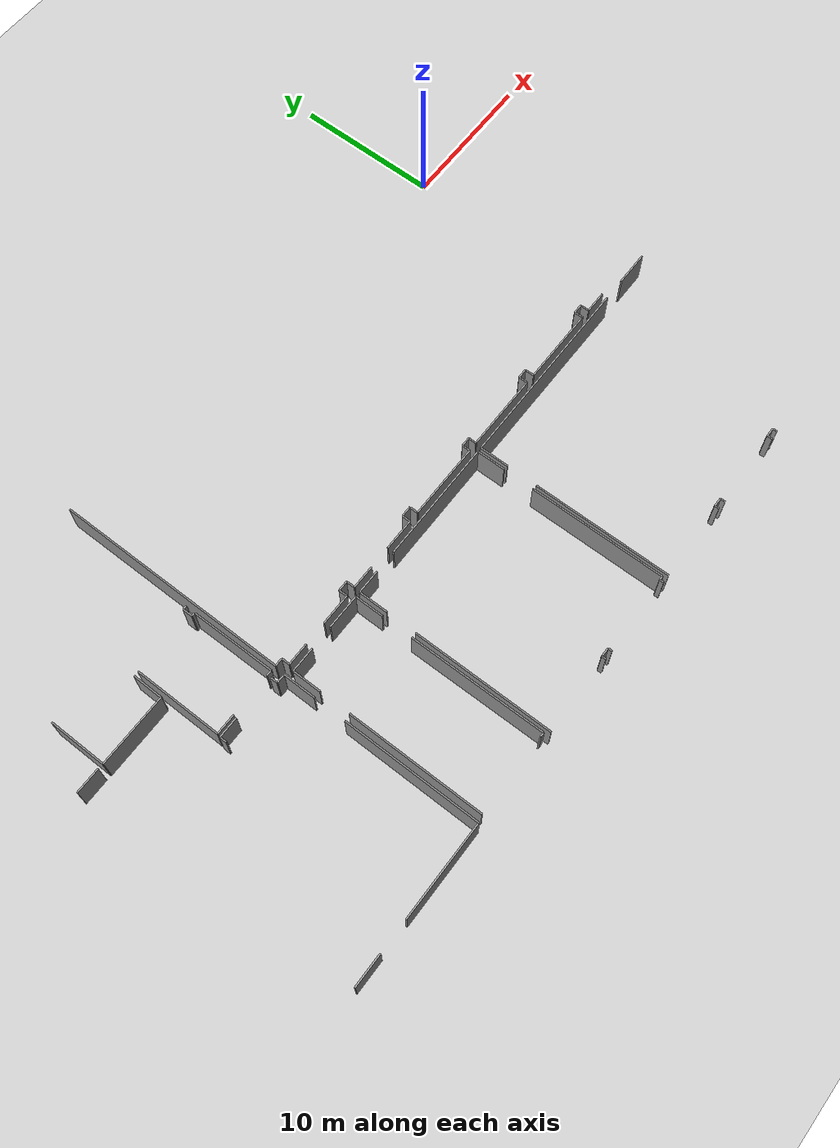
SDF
<sdf version="1.6">
 <world name="default">
  <model name="ground_plane">
   <static>1</static>
   <link name="link">
    <collision name="collision">
     <geometry><plane><normal>0 0 1</normal><size>100 100</size></plane></geometry>
     <surface><friction><ode><mu>100</mu><mu2>50</mu2></ode></friction></surface>
    </collision>
    <visual name="visual">
     <cast_shadows>0</cast_shadows>
     <geometry><plane><normal>0 0 1</normal><size>100 100</size></plane></geometry>
     <material>
      <script><uri>file://media/materials/scripts/gazebo.material</uri><name>Gazebo/Grey</name></script>
     </material>
    </visual>
   </link>
  </model>
  <model name="50010535_PLAN2">
   <static>1</static>
   <link name="Wall_657">
    <collision name="Wall_657_Collision">
     <geometry><box><size>1.54685742966 0.1 2.5</size></box></geometry>
     <pose>0.773428714828 0 1.25 0 0 0</pose>
    </collision>
    <visual name="Wall_657_Visual">
     <pose>0.773428714828 0 1.25 0 0 0</pose>
     <geometry><box><size>1.54685742966 0.1 2.5</size></box></geometry>
     <material>
      <script><uri>file://media/materials/scripts/gazebo.material</uri><name>Gazebo/Grey</name></script>
      <ambient>1 1 1 1</ambient>
     </material>
    </visual>
    <pose>101.500505073 -45.1953012331 0 0 0 3.14159265359</pose>
   </link>
   <link name="Wall_658">
    <collision name="Wall_658_Collision">
     <geometry><box><size>0.611424178701 0.1 2.5</size></box></geometry>
     <pose>0.30571208935 0 1.25 0 0 0</pose>
    </collision>
    <visual name="Wall_658_Visual">
     <pose>0.30571208935 0 1.25 0 0 0</pose>
     <geometry><box><size>0.611424178701 0.1 2.5</size></box></geometry>
     <material>
      <script><uri>file://media/materials/scripts/gazebo.material</uri><name>Gazebo/Grey</name></script>
      <ambient>1 1 1 1</ambient>
     </material>
    </visual>
    <pose>99.9536476433 -45.1953012331 0 0 0 1.57079632679</pose>
   </link>
   <link name="Wall_659">
    <collision name="Wall_659_Collision">
     <geometry><box><size>0.663011505499 0.1 2.5</size></box></geometry>
     <pose>0.331505752749 0 1.25 0 0 0</pose>
    </collision>
    <visual name="Wall_659_Visual">
     <pose>0.331505752749 0 1.25 0 0 0</pose>
     <geometry><box><size>0.663011505499 0.1 2.5</size></box></geometry>
     <material>
      <script><uri>file://media/materials/scripts/gazebo.material</uri><name>Gazebo/Grey</name></script>
      <ambient>1 1 1 1</ambient>
     </material>
    </visual>
    <pose>99.9536476433 -44.5838770544 0 0 0 3.14159265359</pose>
   </link>
   <link name="Wall_660">
    <collision name="Wall_660_Collision">
     <geometry><box><size>0.596684942473 0.1 2.5</size></box></geometry>
     <pose>0.298342471236 0 1.25 0 0 0</pose>
    </collision>
    <visual name="Wall_660_Visual">
     <pose>0.298342471236 0 1.25 0 0 0</pose>
     <geometry><box><size>0.596684942473 0.1 2.5</size></box></geometry>
     <material>
      <script><uri>file://media/materials/scripts/gazebo.material</uri><name>Gazebo/Grey</name></script>
      <ambient>1 1 1 1</ambient>
     </material>
    </visual>
    <pose>99.2906361378 -44.5838770544 0 0 0 -1.57079632679</pose>
   </link>
   <link name="Wall_661">
    <collision name="Wall_661_Collision">
     <geometry><box><size>5.36076186604 0.1 2.5</size></box></geometry>
     <pose>2.68038093302 0 1.25 0 0 0</pose>
    </collision>
    <visual name="Wall_661_Visual">
     <pose>2.68038093302 0 1.25 0 0 0</pose>
     <geometry><box><size>5.36076186604 0.1 2.5</size></box></geometry>
     <material>
      <script><uri>file://media/materials/scripts/gazebo.material</uri><name>Gazebo/Grey</name></script>
      <ambient>1 1 1 1</ambient>
     </material>
    </visual>
    <pose>99.2906361378 -45.1805619969 0 0 0 3.14159265359</pose>
   </link>
   <link name="Wall_662">
    <collision name="Wall_662_Collision">
     <geometry><box><size>0.632008284467 0.1 2.5</size></box></geometry>
     <pose>0.316004142234 0 1.25 0 0 0</pose>
    </collision>
    <visual name="Wall_662_Visual">
     <pose>0.316004142234 0 1.25 0 0 0</pose>
     <geometry><box><size>0.632008284467 0.1 2.5</size></box></geometry>
     <material>
      <script><uri>file://media/materials/scripts/gazebo.material</uri><name>Gazebo/Grey</name></script>
      <ambient>1 1 1 1</ambient>
     </material>
    </visual>
    <pose>93.9298742718 -45.1805619969 0 0 0 1.57079632679</pose>
   </link>
   <link name="Wall_663">
    <collision name="Wall_663_Collision">
     <geometry><box><size>0.668348125512 0.1 2.5</size></box></geometry>
     <pose>0.334174062756 0 1.25 0 0 0</pose>
    </collision>
    <visual name="Wall_663_Visual">
     <pose>0.334174062756 0 1.25 0 0 0</pose>
     <geometry><box><size>0.668348125512 0.1 2.5</size></box></geometry>
     <material>
      <script><uri>file://media/materials/scripts/gazebo.material</uri><name>Gazebo/Grey</name></script>
      <ambient>1 1 1 1</ambient>
     </material>
    </visual>
    <pose>93.9298742718 -44.5485537124 0 0 0 3.14159265359</pose>
   </link>
   <link name="Wall_664">
    <collision name="Wall_664_Collision">
     <geometry><box><size>0.61040767965 0.1 2.5</size></box></geometry>
     <pose>0.305203839825 0 1.25 0 0 0</pose>
    </collision>
    <visual name="Wall_664_Visual">
     <pose>0.305203839825 0 1.25 0 0 0</pose>
     <geometry><box><size>0.61040767965 0.1 2.5</size></box></geometry>
     <material>
      <script><uri>file://media/materials/scripts/gazebo.material</uri><name>Gazebo/Grey</name></script>
      <ambient>1 1 1 1</ambient>
     </material>
    </visual>
    <pose>93.2615261463 -44.5485537124 0 0 0 -1.57079632679</pose>
   </link>
   <link name="Wall_665">
    <collision name="Wall_665_Collision">
     <geometry><box><size>5.37600935179 0.1 2.5</size></box></geometry>
     <pose>2.6880046759 0 1.25 0 0 0</pose>
    </collision>
    <visual name="Wall_665_Visual">
     <pose>2.6880046759 0 1.25 0 0 0</pose>
     <geometry><box><size>5.37600935179 0.1 2.5</size></box></geometry>
     <material>
      <script><uri>file://media/materials/scripts/gazebo.material</uri><name>Gazebo/Grey</name></script>
      <ambient>1 1 1 1</ambient>
     </material>
    </visual>
    <pose>93.2615261463 -45.1589613921 0 0 0 3.14159265359</pose>
   </link>
   <link name="Wall_666">
    <collision name="Wall_666_Collision">
     <geometry><box><size>0.552213109026 0.1 2.5</size></box></geometry>
     <pose>0.276106554513 0 1.25 0 0 0</pose>
    </collision>
    <visual name="Wall_666_Visual">
     <pose>0.276106554513 0 1.25 0 0 0</pose>
     <geometry><box><size>0.552213109026 0.1 2.5</size></box></geometry>
     <material>
      <script><uri>file://media/materials/scripts/gazebo.material</uri><name>Gazebo/Grey</name></script>
      <ambient>1 1 1 1</ambient>
     </material>
    </visual>
    <pose>87.8855167945 -45.1589613921 0 0 0 1.57079632679</pose>
   </link>
   <link name="Wall_667">
    <collision name="Wall_667_Collision">
     <geometry><box><size>0.639377902581 0.1 2.5</size></box></geometry>
     <pose>0.319688951291 0 1.25 0 0 0</pose>
    </collision>
    <visual name="Wall_667_Visual">
     <pose>0.319688951291 0 1.25 0 0 0</pose>
     <geometry><box><size>0.639377902581 0.1 2.5</size></box></geometry>
     <material>
      <script><uri>file://media/materials/scripts/gazebo.material</uri><name>Gazebo/Grey</name></script>
      <ambient>1 1 1 1</ambient>
     </material>
    </visual>
    <pose>87.8855167945 -44.6067482831 0 0 0 3.14159265359</pose>
   </link>
   <link name="Wall_668">
    <collision name="Wall_668_Collision">
     <geometry><box><size>0.566698220491 0.1 2.5</size></box></geometry>
     <pose>0.283349110246 0 1.25 0 0 0</pose>
    </collision>
    <visual name="Wall_668_Visual">
     <pose>0.283349110246 0 1.25 0 0 0</pose>
     <geometry><box><size>0.566698220491 0.1 2.5</size></box></geometry>
     <material>
      <script><uri>file://media/materials/scripts/gazebo.material</uri><name>Gazebo/Grey</name></script>
      <ambient>1 1 1 1</ambient>
     </material>
    </visual>
    <pose>87.2461388919 -44.6067482831 0 0 0 -1.57079632679</pose>
   </link>
   <link name="Wall_669">
    <collision name="Wall_669_Collision">
     <geometry><box><size>5.26216145817 0.1 2.5</size></box></geometry>
     <pose>2.63108072908 0 1.25 0 0 0</pose>
    </collision>
    <visual name="Wall_669_Visual">
     <pose>2.63108072908 0 1.25 0 0 0</pose>
     <geometry><box><size>5.26216145817 0.1 2.5</size></box></geometry>
     <material>
      <script><uri>file://media/materials/scripts/gazebo.material</uri><name>Gazebo/Grey</name></script>
      <ambient>1 1 1 1</ambient>
     </material>
    </visual>
    <pose>87.2461388919 -45.1734465036 0 0 0 3.14159265359</pose>
   </link>
   <link name="Wall_670">
    <collision name="Wall_670_Collision">
     <geometry><box><size>0.587282326258 0.1 2.5</size></box></geometry>
     <pose>0.293641163129 0 1.25 0 0 0</pose>
    </collision>
    <visual name="Wall_670_Visual">
     <pose>0.293641163129 0 1.25 0 0 0</pose>
     <geometry><box><size>0.587282326258 0.1 2.5</size></box></geometry>
     <material>
      <script><uri>file://media/materials/scripts/gazebo.material</uri><name>Gazebo/Grey</name></script>
      <ambient>1 1 1 1</ambient>
     </material>
    </visual>
    <pose>81.9839774337 -45.1734465036 0 0 0 1.57079632679</pose>
   </link>
   <link name="Wall_671">
    <collision name="Wall_671_Collision">
     <geometry><box><size>0.726034446612 0.1 2.5</size></box></geometry>
     <pose>0.363017223306 0 1.25 0 0 0</pose>
    </collision>
    <visual name="Wall_671_Visual">
     <pose>0.363017223306 0 1.25 0 0 0</pose>
     <geometry><box><size>0.726034446612 0.1 2.5</size></box></geometry>
     <material>
      <script><uri>file://media/materials/scripts/gazebo.material</uri><name>Gazebo/Grey</name></script>
      <ambient>1 1 1 1</ambient>
     </material>
    </visual>
    <pose>81.9839774337 -44.5861641773 0 0 0 3.14159265359</pose>
   </link>
   <link name="Wall_672">
    <collision name="Wall_672_Collision">
     <geometry><box><size>0.582708080532 0.1 2.5</size></box></geometry>
     <pose>0.291354040266 0 1.25 0 0 0</pose>
    </collision>
    <visual name="Wall_672_Visual">
     <pose>0.291354040266 0 1.25 0 0 0</pose>
     <geometry><box><size>0.582708080532 0.1 2.5</size></box></geometry>
     <material>
      <script><uri>file://media/materials/scripts/gazebo.material</uri><name>Gazebo/Grey</name></script>
      <ambient>1 1 1 1</ambient>
     </material>
    </visual>
    <pose>81.2579429871 -44.5861641773 0 0 0 -1.57079632679</pose>
   </link>
   <link name="Wall_673">
    <collision name="Wall_673_Collision">
     <geometry><box><size>2.17911983888 0.1 2.5</size></box></geometry>
     <pose>1.08955991944 0 1.25 0 0 0</pose>
    </collision>
    <visual name="Wall_673_Visual">
     <pose>1.08955991944 0 1.25 0 0 0</pose>
     <geometry><box><size>2.17911983888 0.1 2.5</size></box></geometry>
     <material>
      <script><uri>file://media/materials/scripts/gazebo.material</uri><name>Gazebo/Grey</name></script>
      <ambient>1 1 1 1</ambient>
     </material>
    </visual>
    <pose>81.2579429871 -45.1688722578 0 0 0 3.14159265359</pose>
   </link>
   <link name="Wall_674">
    <collision name="Wall_674_Collision">
     <geometry><box><size>1.60937212124 0.1 2.5</size></box></geometry>
     <pose>0.804686060621 0 1.25 0 0 0</pose>
    </collision>
    <visual name="Wall_674_Visual">
     <pose>0.804686060621 0 1.25 0 0 0</pose>
     <geometry><box><size>1.60937212124 0.1 2.5</size></box></geometry>
     <material>
      <script><uri>file://media/materials/scripts/gazebo.material</uri><name>Gazebo/Grey</name></script>
      <ambient>1 1 1 1</ambient>
     </material>
    </visual>
    <pose>77.5225631024 -45.1688722578 0 0 0 3.14159265359</pose>
   </link>
   <link name="Wall_675">
    <collision name="Wall_675_Collision">
     <geometry><box><size>0.591094197696 0.1 2.5</size></box></geometry>
     <pose>0.295547098848 0 1.25 0 0 0</pose>
    </collision>
    <visual name="Wall_675_Visual">
     <pose>0.295547098848 0 1.25 0 0 0</pose>
     <geometry><box><size>0.591094197696 0.1 2.5</size></box></geometry>
     <material>
      <script><uri>file://media/materials/scripts/gazebo.material</uri><name>Gazebo/Grey</name></script>
      <ambient>1 1 1 1</ambient>
     </material>
    </visual>
    <pose>75.9131909811 -45.1688722578 0 0 0 1.57079632679</pose>
   </link>
   <link name="Wall_676">
    <collision name="Wall_676_Collision">
     <geometry><box><size>0.697572473206 0.1 2.5</size></box></geometry>
     <pose>0.348786236603 0 1.25 0 0 0</pose>
    </collision>
    <visual name="Wall_676_Visual">
     <pose>0.348786236603 0 1.25 0 0 0</pose>
     <geometry><box><size>0.697572473206 0.1 2.5</size></box></geometry>
     <material>
      <script><uri>file://media/materials/scripts/gazebo.material</uri><name>Gazebo/Grey</name></script>
      <ambient>1 1 1 1</ambient>
     </material>
    </visual>
    <pose>75.9131909811 -44.5777780601 0 0 0 3.14159265359</pose>
   </link>
   <link name="Wall_677">
    <collision name="Wall_677_Collision">
     <geometry><box><size>0.581183331957 0.1 2.5</size></box></geometry>
     <pose>0.290591665978 0 1.25 0 0 0</pose>
    </collision>
    <visual name="Wall_677_Visual">
     <pose>0.290591665978 0 1.25 0 0 0</pose>
     <geometry><box><size>0.581183331957 0.1 2.5</size></box></geometry>
     <material>
      <script><uri>file://media/materials/scripts/gazebo.material</uri><name>Gazebo/Grey</name></script>
      <ambient>1 1 1 1</ambient>
     </material>
    </visual>
    <pose>75.2156185079 -44.5777780601 0 0 0 -1.57079632679</pose>
   </link>
   <link name="Wall_678">
    <collision name="Wall_678_Collision">
     <geometry><box><size>2.13159850829 0.1 2.5</size></box></geometry>
     <pose>1.06579925414 0 1.25 0 0 0</pose>
    </collision>
    <visual name="Wall_678_Visual">
     <pose>1.06579925414 0 1.25 0 0 0</pose>
     <geometry><box><size>2.13159850829 0.1 2.5</size></box></geometry>
     <material>
      <script><uri>file://media/materials/scripts/gazebo.material</uri><name>Gazebo/Grey</name></script>
      <ambient>1 1 1 1</ambient>
     </material>
    </visual>
    <pose>75.2156185079 -45.1589613921 0 0 0 3.14159265359</pose>
   </link>
   <link name="Wall_679">
    <collision name="Wall_679_Collision">
     <geometry><box><size>1.52042845435 0.1 2.5</size></box></geometry>
     <pose>0.760214227175 0 1.25 0 0 0</pose>
    </collision>
    <visual name="Wall_679_Visual">
     <pose>0.760214227175 0 1.25 0 0 0</pose>
     <geometry><box><size>1.52042845435 0.1 2.5</size></box></geometry>
     <material>
      <script><uri>file://media/materials/scripts/gazebo.material</uri><name>Gazebo/Grey</name></script>
      <ambient>1 1 1 1</ambient>
     </material>
    </visual>
    <pose>71.4494895269 -45.1589613921 0 0 0 3.14159265359</pose>
   </link>
   <link name="Wall_680">
    <collision name="Wall_680_Collision">
     <geometry><box><size>0.565173471916 0.1 2.5</size></box></geometry>
     <pose>0.282586735958 0 1.25 0 0 0</pose>
    </collision>
    <visual name="Wall_680_Visual">
     <pose>0.282586735958 0 1.25 0 0 0</pose>
     <geometry><box><size>0.565173471916 0.1 2.5</size></box></geometry>
     <material>
      <script><uri>file://media/materials/scripts/gazebo.material</uri><name>Gazebo/Grey</name></script>
      <ambient>1 1 1 1</ambient>
     </material>
    </visual>
    <pose>69.9290610725 -45.1589613921 0 0 0 1.57079632679</pose>
   </link>
   <link name="Wall_681">
    <collision name="Wall_681_Collision">
     <geometry><box><size>0.551450734738 0.1 2.5</size></box></geometry>
     <pose>0.275725367369 0 1.25 0 0 0</pose>
    </collision>
    <visual name="Wall_681_Visual">
     <pose>0.275725367369 0 1.25 0 0 0</pose>
     <geometry><box><size>0.551450734738 0.1 2.5</size></box></geometry>
     <material>
      <script><uri>file://media/materials/scripts/gazebo.material</uri><name>Gazebo/Grey</name></script>
      <ambient>1 1 1 1</ambient>
     </material>
    </visual>
    <pose>69.9290610725 -44.5937879202 0 0 0 3.14159265359</pose>
   </link>
   <link name="Wall_682">
    <collision name="Wall_682_Collision">
     <geometry><box><size>16.2129057261 0.1 2.5</size></box></geometry>
     <pose>8.10645286303 0 1.25 0 0 0</pose>
    </collision>
    <visual name="Wall_682_Visual">
     <pose>8.10645286303 0 1.25 0 0 0</pose>
     <geometry><box><size>16.2129057261 0.1 2.5</size></box></geometry>
     <material>
      <script><uri>file://media/materials/scripts/gazebo.material</uri><name>Gazebo/Grey</name></script>
      <ambient>1 1 1 1</ambient>
     </material>
    </visual>
    <pose>69.3776103378 -44.5937879202 0 0 0 1.57079632679</pose>
   </link>
   <link name="Wall_697">
    <collision name="Wall_697_Collision">
     <geometry><box><size>0.315368830327 0.1 2.5</size></box></geometry>
     <pose>0.157684415164 0 1.25 0 0 0</pose>
    </collision>
    <visual name="Wall_697_Visual">
     <pose>0.157684415164 0 1.25 0 0 0</pose>
     <geometry><box><size>0.315368830327 0.1 2.5</size></box></geometry>
     <material>
      <script><uri>file://media/materials/scripts/gazebo.material</uri><name>Gazebo/Grey</name></script>
      <ambient>1 1 1 1</ambient>
     </material>
    </visual>
    <pose>99.8680075983 -59.4514462876 0 0 0 1.57079632679</pose>
   </link>
   <link name="Wall_698">
    <collision name="Wall_698_Collision">
     <geometry><box><size>0.620826794915 0.1 2.5</size></box></geometry>
     <pose>0.310413397457 0 1.25 0 0 0</pose>
    </collision>
    <visual name="Wall_698_Visual">
     <pose>0.310413397457 0 1.25 0 0 0</pose>
     <geometry><box><size>0.620826794915 0.1 2.5</size></box></geometry>
     <material>
      <script><uri>file://media/materials/scripts/gazebo.material</uri><name>Gazebo/Grey</name></script>
      <ambient>1 1 1 1</ambient>
     </material>
    </visual>
    <pose>99.8680075983 -59.1360774572 0 0 0 3.14159265359</pose>
   </link>
   <link name="Wall_699">
    <collision name="Wall_699_Collision">
     <geometry><box><size>0.363144285687 0.1 2.5</size></box></geometry>
     <pose>0.181572142844 0 1.25 0 0 0</pose>
    </collision>
    <visual name="Wall_699_Visual">
     <pose>0.181572142844 0 1.25 0 0 0</pose>
     <geometry><box><size>0.363144285687 0.1 2.5</size></box></geometry>
     <material>
      <script><uri>file://media/materials/scripts/gazebo.material</uri><name>Gazebo/Grey</name></script>
      <ambient>1 1 1 1</ambient>
     </material>
    </visual>
    <pose>99.2471808034 -59.1360774572 0 0 0 -1.57079632679</pose>
   </link>
   <link name="Wall_700">
    <collision name="Wall_700_Collision">
     <geometry><box><size>0.35348754471 0.1 2.5</size></box></geometry>
     <pose>0.176743772355 0 1.25 0 0 0</pose>
    </collision>
    <visual name="Wall_700_Visual">
     <pose>0.176743772355 0 1.25 0 0 0</pose>
     <geometry><box><size>0.35348754471 0.1 2.5</size></box></geometry>
     <material>
      <script><uri>file://media/materials/scripts/gazebo.material</uri><name>Gazebo/Grey</name></script>
      <ambient>1 1 1 1</ambient>
     </material>
    </visual>
    <pose>93.8876895612 -59.4992217429 0 0 0 1.57079632679</pose>
   </link>
   <link name="Wall_701">
    <collision name="Wall_701_Collision">
     <geometry><box><size>0.611424178701 0.1 2.5</size></box></geometry>
     <pose>0.30571208935 0 1.25 0 0 0</pose>
    </collision>
    <visual name="Wall_701_Visual">
     <pose>0.30571208935 0 1.25 0 0 0</pose>
     <geometry><box><size>0.611424178701 0.1 2.5</size></box></geometry>
     <material>
      <script><uri>file://media/materials/scripts/gazebo.material</uri><name>Gazebo/Grey</name></script>
      <ambient>1 1 1 1</ambient>
     </material>
    </visual>
    <pose>93.8876895612 -59.1457341982 0 0 0 3.14159265359</pose>
   </link>
   <link name="Wall_702">
    <collision name="Wall_702_Collision">
     <geometry><box><size>0.296055348373 0.1 2.5</size></box></geometry>
     <pose>0.148027674187 0 1.25 0 0 0</pose>
    </collision>
    <visual name="Wall_702_Visual">
     <pose>0.148027674187 0 1.25 0 0 0</pose>
     <geometry><box><size>0.296055348373 0.1 2.5</size></box></geometry>
     <material>
      <script><uri>file://media/materials/scripts/gazebo.material</uri><name>Gazebo/Grey</name></script>
      <ambient>1 1 1 1</ambient>
     </material>
    </visual>
    <pose>93.2762653825 -59.1457341982 0 0 0 -1.57079632679</pose>
   </link>
   <link name="Wall_703">
    <collision name="Wall_703_Collision">
     <geometry><box><size>9.64784661029 0.1 2.5</size></box></geometry>
     <pose>4.82392330515 0 1.25 0 0 0</pose>
    </collision>
    <visual name="Wall_703_Visual">
     <pose>4.82392330515 0 1.25 0 0 0</pose>
     <geometry><box><size>9.64784661029 0.1 2.5</size></box></geometry>
     <material>
      <script><uri>file://media/materials/scripts/gazebo.material</uri><name>Gazebo/Grey</name></script>
      <ambient>1 1 1 1</ambient>
     </material>
    </visual>
    <pose>87.8115664886 -59.4417895466 0 0 0 1.57079632679</pose>
   </link>
   <link name="Wall_704">
    <collision name="Wall_704_Collision">
     <geometry><box><size>2.0215624861 0.1 2.5</size></box></geometry>
     <pose>1.01078124305 0 1.25 0 0 0</pose>
    </collision>
    <visual name="Wall_704_Visual">
     <pose>1.01078124305 0 1.25 0 0 0</pose>
     <geometry><box><size>2.0215624861 0.1 2.5</size></box></geometry>
     <material>
      <script><uri>file://media/materials/scripts/gazebo.material</uri><name>Gazebo/Grey</name></script>
      <ambient>1 1 1 1</ambient>
     </material>
    </visual>
    <pose>87.8115664886 -47.6232092146 0 0 0 1.57079632679</pose>
   </link>
   <link name="Wall_705">
    <collision name="Wall_705_Collision">
     <geometry><box><size>13.6881762101 0.1 2.5</size></box></geometry>
     <pose>6.84408810506 0 1.25 0 0 0</pose>
    </collision>
    <visual name="Wall_705_Visual">
     <pose>6.84408810506 0 1.25 0 0 0</pose>
     <geometry><box><size>13.6881762101 0.1 2.5</size></box></geometry>
     <material>
      <script><uri>file://media/materials/scripts/gazebo.material</uri><name>Gazebo/Grey</name></script>
      <ambient>1 1 1 1</ambient>
     </material>
    </visual>
    <pose>87.8115664886 -45.6016467285 0 0 0 0.0</pose>
   </link>
   <link name="Wall_706">
    <collision name="Wall_706_Collision">
     <geometry><box><size>2.4395977205 0.1 2.5</size></box></geometry>
     <pose>1.21979886025 0 1.25 0 0 0</pose>
    </collision>
    <visual name="Wall_706_Visual">
     <pose>1.21979886025 0 1.25 0 0 0</pose>
     <geometry><box><size>2.4395977205 0.1 2.5</size></box></geometry>
     <material>
      <script><uri>file://media/materials/scripts/gazebo.material</uri><name>Gazebo/Grey</name></script>
      <ambient>1 1 1 1</ambient>
     </material>
    </visual>
    <pose>103.063118238 -45.6016467285 0 0 0 0.0</pose>
   </link>
   <link name="Wall_709">
    <collision name="Wall_709_Collision">
     <geometry><box><size>0.269118123543 0.1 2.5</size></box></geometry>
     <pose>0.134559061771 0 1.25 0 0 0</pose>
    </collision>
    <visual name="Wall_709_Visual">
     <pose>0.134559061771 0 1.25 0 0 0</pose>
     <geometry><box><size>0.269118123543 0.1 2.5</size></box></geometry>
     <material>
      <script><uri>file://media/materials/scripts/gazebo.material</uri><name>Gazebo/Grey</name></script>
      <ambient>1 1 1 1</ambient>
     </material>
    </visual>
    <pose>87.5338081231 -59.1790245421 0 0 0 3.14159265359</pose>
   </link>
   <link name="Wall_710">
    <collision name="Wall_710_Collision">
     <geometry><box><size>0.280045488332 0.1 2.5</size></box></geometry>
     <pose>0.140022744166 0 1.25 0 0 0</pose>
    </collision>
    <visual name="Wall_710_Visual">
     <pose>0.140022744166 0 1.25 0 0 0</pose>
     <geometry><box><size>0.280045488332 0.1 2.5</size></box></geometry>
     <material>
      <script><uri>file://media/materials/scripts/gazebo.material</uri><name>Gazebo/Grey</name></script>
      <ambient>1 1 1 1</ambient>
     </material>
    </visual>
    <pose>87.2646899996 -59.1790245421 0 0 0 -1.57079632679</pose>
   </link>
   <link name="Wall_711">
    <collision name="Wall_711_Collision">
     <geometry><box><size>0.297580096949 0.1 2.5</size></box></geometry>
     <pose>0.148790048474 0 1.25 0 0 0</pose>
    </collision>
    <visual name="Wall_711_Visual">
     <pose>0.148790048474 0 1.25 0 0 0</pose>
     <geometry><box><size>0.297580096949 0.1 2.5</size></box></geometry>
     <material>
      <script><uri>file://media/materials/scripts/gazebo.material</uri><name>Gazebo/Grey</name></script>
      <ambient>1 1 1 1</ambient>
     </material>
    </visual>
    <pose>81.9013868859 -59.4590700304 0 0 0 1.57079632679</pose>
   </link>
   <link name="Wall_712">
    <collision name="Wall_712_Collision">
     <geometry><box><size>0.623113917778 0.1 2.5</size></box></geometry>
     <pose>0.311556958889 0 1.25 0 0 0</pose>
    </collision>
    <visual name="Wall_712_Visual">
     <pose>0.311556958889 0 1.25 0 0 0</pose>
     <geometry><box><size>0.623113917778 0.1 2.5</size></box></geometry>
     <material>
      <script><uri>file://media/materials/scripts/gazebo.material</uri><name>Gazebo/Grey</name></script>
      <ambient>1 1 1 1</ambient>
     </material>
    </visual>
    <pose>81.9013868859 -59.1614899335 0 0 0 3.14159265359</pose>
   </link>
   <link name="Wall_713">
    <collision name="Wall_713_Collision">
     <geometry><box><size>0.29071872836 0.1 2.5</size></box></geometry>
     <pose>0.14535936418 0 1.25 0 0 0</pose>
    </collision>
    <visual name="Wall_713_Visual">
     <pose>0.14535936418 0 1.25 0 0 0</pose>
     <geometry><box><size>0.29071872836 0.1 2.5</size></box></geometry>
     <material>
      <script><uri>file://media/materials/scripts/gazebo.material</uri><name>Gazebo/Grey</name></script>
      <ambient>1 1 1 1</ambient>
     </material>
    </visual>
    <pose>81.2782729681 -59.1614899335 0 0 0 -1.57079632679</pose>
   </link>
   <link name="Wall_714">
    <collision name="Wall_714_Collision">
     <geometry><box><size>9.68749007325 0.1 2.5</size></box></geometry>
     <pose>4.84374503663 0 1.25 0 0 0</pose>
    </collision>
    <visual name="Wall_714_Visual">
     <pose>4.84374503663 0 1.25 0 0 0</pose>
     <geometry><box><size>9.68749007325 0.1 2.5</size></box></geometry>
     <material>
      <script><uri>file://media/materials/scripts/gazebo.material</uri><name>Gazebo/Grey</name></script>
      <ambient>1 1 1 1</ambient>
     </material>
    </visual>
    <pose>75.8575376581 -59.4522086618 0 0 0 1.57079632679</pose>
   </link>
   <link name="Wall_715">
    <collision name="Wall_715_Collision">
     <geometry><box><size>2.04697496236 0.1 2.5</size></box></geometry>
     <pose>1.02348748118 0 1.25 0 0 0</pose>
    </collision>
    <visual name="Wall_715_Visual">
     <pose>1.02348748118 0 1.25 0 0 0</pose>
     <geometry><box><size>2.04697496236 0.1 2.5</size></box></geometry>
     <material>
      <script><uri>file://media/materials/scripts/gazebo.material</uri><name>Gazebo/Grey</name></script>
      <ambient>1 1 1 1</ambient>
     </material>
    </visual>
    <pose>75.8575376581 -47.6486216908 0 0 0 1.57079632679</pose>
   </link>
   <link name="Wall_716">
    <collision name="Wall_716_Collision">
     <geometry><box><size>1.62970210225 0.1 2.5</size></box></geometry>
     <pose>0.814851051124 0 1.25 0 0 0</pose>
    </collision>
    <visual name="Wall_716_Visual">
     <pose>0.814851051124 0 1.25 0 0 0</pose>
     <geometry><box><size>1.62970210225 0.1 2.5</size></box></geometry>
     <material>
      <script><uri>file://media/materials/scripts/gazebo.material</uri><name>Gazebo/Grey</name></script>
      <ambient>1 1 1 1</ambient>
     </material>
    </visual>
    <pose>75.8575376581 -45.6016467285 0 0 0 0.0</pose>
   </link>
   <link name="Wall_717">
    <collision name="Wall_717_Collision">
     <geometry><box><size>8.44151636246 0.1 2.5</size></box></geometry>
     <pose>4.22075818123 0 1.25 0 0 0</pose>
    </collision>
    <visual name="Wall_717_Visual">
     <pose>4.22075818123 0 1.25 0 0 0</pose>
     <geometry><box><size>8.44151636246 0.1 2.5</size></box></geometry>
     <material>
      <script><uri>file://media/materials/scripts/gazebo.material</uri><name>Gazebo/Grey</name></script>
      <ambient>1 1 1 1</ambient>
     </material>
    </visual>
    <pose>79.0661169101 -45.6016467285 0 0 0 0.0</pose>
   </link>
   <link name="Wall_718">
    <collision name="Wall_718_Collision">
     <geometry><box><size>1.99818300795 0.1 2.5</size></box></geometry>
     <pose>0.999091503974 0 1.25 0 0 0</pose>
    </collision>
    <visual name="Wall_718_Visual">
     <pose>0.999091503974 0 1.25 0 0 0</pose>
     <geometry><box><size>1.99818300795 0.1 2.5</size></box></geometry>
     <material>
      <script><uri>file://media/materials/scripts/gazebo.material</uri><name>Gazebo/Grey</name></script>
      <ambient>1 1 1 1</ambient>
     </material>
    </visual>
    <pose>87.5076332726 -45.6016467285 0 0 0 -1.57079632679</pose>
   </link>
   <link name="Wall_719">
    <collision name="Wall_719_Collision">
     <geometry><box><size>9.42425316823 0.1 2.5</size></box></geometry>
     <pose>4.71212658412 0 1.25 0 0 0</pose>
    </collision>
    <visual name="Wall_719_Visual">
     <pose>4.71212658412 0 1.25 0 0 0</pose>
     <geometry><box><size>9.42425316823 0.1 2.5</size></box></geometry>
     <material>
      <script><uri>file://media/materials/scripts/gazebo.material</uri><name>Gazebo/Grey</name></script>
      <ambient>1 1 1 1</ambient>
     </material>
    </visual>
    <pose>87.5076332726 -49.7548077229 0 0 0 -1.56801893067</pose>
   </link>
   <link name="Wall_720">
    <collision name="Wall_720_Collision">
     <geometry><box><size>0.313335832227 0.1 2.5</size></box></geometry>
     <pose>0.156667916113 0 1.25 0 0 0</pose>
    </collision>
    <visual name="Wall_720_Visual">
     <pose>0.156667916113 0 1.25 0 0 0</pose>
     <geometry><box><size>0.313335832227 0.1 2.5</size></box></geometry>
     <material>
      <script><uri>file://media/materials/scripts/gazebo.material</uri><name>Gazebo/Grey</name></script>
      <ambient>1 1 1 1</ambient>
     </material>
    </visual>
    <pose>75.5642776821 -59.1218464705 0 0 0 3.14159265359</pose>
   </link>
   <link name="Wall_721">
    <collision name="Wall_721_Collision">
     <geometry><box><size>9.38609810486 0.1 2.5</size></box></geometry>
     <pose>4.69304905243 0 1.25 0 0 0</pose>
    </collision>
    <visual name="Wall_721_Visual">
     <pose>4.69304905243 0 1.25 0 0 0</pose>
     <geometry><box><size>9.38609810486 0.1 2.5</size></box></geometry>
     <material>
      <script><uri>file://media/materials/scripts/gazebo.material</uri><name>Gazebo/Grey</name></script>
      <ambient>1 1 1 1</ambient>
     </material>
    </visual>
    <pose>69.7549856102 -59.1218464705 0 0 0 1.57079632679</pose>
   </link>
   <link name="Wall_722">
    <collision name="Wall_722_Collision">
     <geometry><box><size>1.99055926507 0.1 2.5</size></box></geometry>
     <pose>0.995279632536 0 1.25 0 0 0</pose>
    </collision>
    <visual name="Wall_722_Visual">
     <pose>0.995279632536 0 1.25 0 0 0</pose>
     <geometry><box><size>1.99055926507 0.1 2.5</size></box></geometry>
     <material>
      <script><uri>file://media/materials/scripts/gazebo.material</uri><name>Gazebo/Grey</name></script>
      <ambient>1 1 1 1</ambient>
     </material>
    </visual>
    <pose>69.7549856102 -47.5853446249 0 0 0 1.57079632679</pose>
   </link>
   <link name="Wall_723">
    <collision name="Wall_723_Collision">
     <geometry><box><size>1.71203852531 0.1 2.5</size></box></geometry>
     <pose>0.856019262657 0 1.25 0 0 0</pose>
    </collision>
    <visual name="Wall_723_Visual">
     <pose>0.856019262657 0 1.25 0 0 0</pose>
     <geometry><box><size>1.71203852531 0.1 2.5</size></box></geometry>
     <material>
      <script><uri>file://media/materials/scripts/gazebo.material</uri><name>Gazebo/Grey</name></script>
      <ambient>1 1 1 1</ambient>
     </material>
    </visual>
    <pose>69.7549856102 -45.5947853599 0 0 0 0.0</pose>
   </link>
   <link name="Wall_724">
    <collision name="Wall_724_Collision">
     <geometry><box><size>2.40147900612 0.1 2.5</size></box></geometry>
     <pose>1.20073950306 0 1.25 0 0 0</pose>
    </collision>
    <visual name="Wall_724_Visual">
     <pose>1.20073950306 0 1.25 0 0 0</pose>
     <geometry><box><size>2.40147900612 0.1 2.5</size></box></geometry>
     <material>
      <script><uri>file://media/materials/scripts/gazebo.material</uri><name>Gazebo/Grey</name></script>
      <ambient>1 1 1 1</ambient>
     </material>
    </visual>
    <pose>73.1048582301 -45.5947853599 0 0 0 0.0</pose>
   </link>
   <link name="Wall_725">
    <collision name="Wall_725_Collision">
     <geometry><box><size>1.99869125747 0.1 2.5</size></box></geometry>
     <pose>0.999345628736 0 1.25 0 0 0</pose>
    </collision>
    <visual name="Wall_725_Visual">
     <pose>0.999345628736 0 1.25 0 0 0</pose>
     <geometry><box><size>1.99869125747 0.1 2.5</size></box></geometry>
     <material>
      <script><uri>file://media/materials/scripts/gazebo.material</uri><name>Gazebo/Grey</name></script>
      <ambient>1 1 1 1</ambient>
     </material>
    </visual>
    <pose>75.5063372363 -45.5947853599 0 0 0 -1.57079632679</pose>
   </link>
   <link name="Wall_726">
    <collision name="Wall_726_Collision">
     <geometry><box><size>9.37611213992 0.1 2.5</size></box></geometry>
     <pose>4.68805606996 0 1.25 0 0 0</pose>
    </collision>
    <visual name="Wall_726_Visual">
     <pose>4.68805606996 0 1.25 0 0 0</pose>
     <geometry><box><size>9.37611213992 0.1 2.5</size></box></geometry>
     <material>
      <script><uri>file://media/materials/scripts/gazebo.material</uri><name>Gazebo/Grey</name></script>
      <ambient>1 1 1 1</ambient>
     </material>
    </visual>
    <pose>75.5063372363 -49.7459133562 0 0 0 -1.56461670631</pose>
   </link>
   <link name="Wall_727">
    <collision name="Wall_727_Collision">
     <geometry><box><size>6.52516152805 0.1 2.5</size></box></geometry>
     <pose>3.26258076403 0 1.25 0 0 0</pose>
    </collision>
    <visual name="Wall_727_Visual">
     <pose>3.26258076403 0 1.25 0 0 0</pose>
     <geometry><box><size>6.52516152805 0.1 2.5</size></box></geometry>
     <material>
      <script><uri>file://media/materials/scripts/gazebo.material</uri><name>Gazebo/Grey</name></script>
      <ambient>1 1 1 1</ambient>
     </material>
    </visual>
    <pose>69.2708779375 -59.2524665985 0 0 0 3.14159265359</pose>
   </link>
   <link name="Wall_728">
    <collision name="Wall_728_Collision">
     <geometry><box><size>2.1905554532 0.1 2.5</size></box></geometry>
     <pose>1.0952777266 0 1.25 0 0 0</pose>
    </collision>
    <visual name="Wall_728_Visual">
     <pose>1.0952777266 0 1.25 0 0 0</pose>
     <geometry><box><size>2.1905554532 0.1 2.5</size></box></geometry>
     <material>
      <script><uri>file://media/materials/scripts/gazebo.material</uri><name>Gazebo/Grey</name></script>
      <ambient>1 1 1 1</ambient>
     </material>
    </visual>
    <pose>60.5361015991 -59.2524665985 0 0 0 3.14159265359</pose>
   </link>
   <link name="Wall_734">
    <collision name="Wall_734_Collision">
     <geometry><box><size>0.480295801224 0.1 2.5</size></box></geometry>
     <pose>0.240147900612 0 1.25 0 0 0</pose>
    </collision>
    <visual name="Wall_734_Visual">
     <pose>0.240147900612 0 1.25 0 0 0</pose>
     <geometry><box><size>0.480295801224 0.1 2.5</size></box></geometry>
     <material>
      <script><uri>file://media/materials/scripts/gazebo.material</uri><name>Gazebo/Grey</name></script>
      <ambient>1 1 1 1</ambient>
     </material>
    </visual>
    <pose>64.244544259 -45.2862778981 0 0 0 1.57079632679</pose>
   </link>
   <link name="Wall_735">
    <collision name="Wall_735_Collision">
     <geometry><box><size>1.40276868929 0.1 2.5</size></box></geometry>
     <pose>0.701384344644 0 1.25 0 0 0</pose>
    </collision>
    <visual name="Wall_735_Visual">
     <pose>0.701384344644 0 1.25 0 0 0</pose>
     <geometry><box><size>1.40276868929 0.1 2.5</size></box></geometry>
     <material>
      <script><uri>file://media/materials/scripts/gazebo.material</uri><name>Gazebo/Grey</name></script>
      <ambient>1 1 1 1</ambient>
     </material>
    </visual>
    <pose>64.244544259 -44.8059820969 0 0 0 0.0</pose>
   </link>
   <link name="Wall_736">
    <collision name="Wall_736_Collision">
     <geometry><box><size>0.520447513707 0.1 2.5</size></box></geometry>
     <pose>0.260223756853 0 1.25 0 0 0</pose>
    </collision>
    <visual name="Wall_736_Visual">
     <pose>0.260223756853 0 1.25 0 0 0</pose>
     <geometry><box><size>0.520447513707 0.1 2.5</size></box></geometry>
     <material>
      <script><uri>file://media/materials/scripts/gazebo.material</uri><name>Gazebo/Grey</name></script>
      <ambient>1 1 1 1</ambient>
     </material>
    </visual>
    <pose>68.6609785074 -44.8059820969 0 0 0 -1.57079632679</pose>
   </link>
   <link name="Wall_737">
    <collision name="Wall_737_Collision">
     <geometry><box><size>0.609899430125 0.1 2.5</size></box></geometry>
     <pose>0.304949715063 0 1.25 0 0 0</pose>
    </collision>
    <visual name="Wall_737_Visual">
     <pose>0.304949715063 0 1.25 0 0 0</pose>
     <geometry><box><size>0.609899430125 0.1 2.5</size></box></geometry>
     <material>
      <script><uri>file://media/materials/scripts/gazebo.material</uri><name>Gazebo/Grey</name></script>
      <ambient>1 1 1 1</ambient>
     </material>
    </visual>
    <pose>68.6609785074 -45.3264296106 0 0 0 0.0</pose>
   </link>
   <link name="Wall_738">
    <collision name="Wall_738_Collision">
     <geometry><box><size>2.23629791046 0.1 2.5</size></box></geometry>
     <pose>1.11814895523 0 1.25 0 0 0</pose>
    </collision>
    <visual name="Wall_738_Visual">
     <pose>1.11814895523 0 1.25 0 0 0</pose>
     <geometry><box><size>2.23629791046 0.1 2.5</size></box></geometry>
     <material>
      <script><uri>file://media/materials/scripts/gazebo.material</uri><name>Gazebo/Grey</name></script>
      <ambient>1 1 1 1</ambient>
     </material>
    </visual>
    <pose>69.2708779375 -45.3264296106 0 0 0 -1.57079632679</pose>
   </link>
   <link name="Wall_739">
    <collision name="Wall_739_Collision">
     <geometry><box><size>9.45344116694 0.1 2.5</size></box></geometry>
     <pose>4.72672058347 0 1.25 0 0 0</pose>
    </collision>
    <visual name="Wall_739_Visual">
     <pose>4.72672058347 0 1.25 0 0 0</pose>
     <geometry><box><size>9.45344116694 0.1 2.5</size></box></geometry>
     <material>
      <script><uri>file://media/materials/scripts/gazebo.material</uri><name>Gazebo/Grey</name></script>
      <ambient>1 1 1 1</ambient>
     </material>
    </visual>
    <pose>69.2708779375 -49.7990254315 0 0 0 -1.57079632679</pose>
   </link>
   <link name="Wall_740">
    <collision name="Wall_740_Collision">
     <geometry><box><size>0.40126300007 0.1 2.5</size></box></geometry>
     <pose>0.200631500035 0 1.25 0 0 0</pose>
    </collision>
    <visual name="Wall_740_Visual">
     <pose>0.200631500035 0 1.25 0 0 0</pose>
     <geometry><box><size>0.40126300007 0.1 2.5</size></box></geometry>
     <material>
      <script><uri>file://media/materials/scripts/gazebo.material</uri><name>Gazebo/Grey</name></script>
      <ambient>1 1 1 1</ambient>
     </material>
    </visual>
    <pose>69.0101459311 -44.5770156859 0 0 0 3.14159265359</pose>
   </link>
   <link name="Wall_741">
    <collision name="Wall_741_Collision">
     <geometry><box><size>1.3918413245 0.1 2.5</size></box></geometry>
     <pose>0.695920662249 0 1.25 0 0 0</pose>
    </collision>
    <visual name="Wall_741_Visual">
     <pose>0.695920662249 0 1.25 0 0 0</pose>
     <geometry><box><size>1.3918413245 0.1 2.5</size></box></geometry>
     <material>
      <script><uri>file://media/materials/scripts/gazebo.material</uri><name>Gazebo/Grey</name></script>
      <ambient>1 1 1 1</ambient>
     </material>
    </visual>
    <pose>65.7016956475 -44.5770156859 0 0 0 3.14159265359</pose>
   </link>
   <link name="Wall_742">
    <collision name="Wall_742_Collision">
     <geometry><box><size>6.0321594887 0.1 2.5</size></box></geometry>
     <pose>3.01607974435 0 1.25 0 0 0</pose>
    </collision>
    <visual name="Wall_742_Visual">
     <pose>3.01607974435 0 1.25 0 0 0</pose>
     <geometry><box><size>6.0321594887 0.1 2.5</size></box></geometry>
     <material>
      <script><uri>file://media/materials/scripts/gazebo.material</uri><name>Gazebo/Grey</name></script>
      <ambient>1 1 1 1</ambient>
     </material>
    </visual>
    <pose>64.309854323 -44.5770156859 0 0 0 1.57079632679</pose>
   </link>
   <link name="Wall_763">
    <collision name="Wall_763_Collision">
     <geometry><box><size>0.276995991182 0.1 2.5</size></box></geometry>
     <pose>0.138497995591 0 1.25 0 0 0</pose>
    </collision>
    <visual name="Wall_763_Visual">
     <pose>0.138497995591 0 1.25 0 0 0</pose>
     <geometry><box><size>0.276995991182 0.1 2.5</size></box></geometry>
     <material>
      <script><uri>file://media/materials/scripts/gazebo.material</uri><name>Gazebo/Grey</name></script>
      <ambient>1 1 1 1</ambient>
     </material>
    </visual>
    <pose>69.0101459311 -38.0792996322 0 0 0 3.14159265359</pose>
   </link>
   <link name="Wall_764">
    <collision name="Wall_764_Collision">
     <geometry><box><size>0.68105436364 0.1 2.5</size></box></geometry>
     <pose>0.34052718182 0 1.25 0 0 0</pose>
    </collision>
    <visual name="Wall_764_Visual">
     <pose>0.34052718182 0 1.25 0 0 0</pose>
     <geometry><box><size>0.68105436364 0.1 2.5</size></box></geometry>
     <material>
      <script><uri>file://media/materials/scripts/gazebo.material</uri><name>Gazebo/Grey</name></script>
      <ambient>1 1 1 1</ambient>
     </material>
    </visual>
    <pose>68.73314994 -38.0792996322 0 0 0 -1.57079632679</pose>
   </link>
   <link name="Wall_765">
    <collision name="Wall_765_Collision">
     <geometry><box><size>0.24192677395 0.1 2.5</size></box></geometry>
     <pose>0.120963386975 0 1.25 0 0 0</pose>
    </collision>
    <visual name="Wall_765_Visual">
     <pose>0.120963386975 0 1.25 0 0 0</pose>
     <geometry><box><size>0.24192677395 0.1 2.5</size></box></geometry>
     <material>
      <script><uri>file://media/materials/scripts/gazebo.material</uri><name>Gazebo/Grey</name></script>
      <ambient>1 1 1 1</ambient>
     </material>
    </visual>
    <pose>68.73314994 -38.7603539958 0 0 0 0.0</pose>
   </link>
   <link name="Wall_766">
    <collision name="Wall_766_Collision">
     <geometry><box><size>5.81676740695 0.1 2.5</size></box></geometry>
     <pose>2.90838370348 0 1.25 0 0 0</pose>
    </collision>
    <visual name="Wall_766_Visual">
     <pose>2.90838370348 0 1.25 0 0 0</pose>
     <geometry><box><size>5.81676740695 0.1 2.5</size></box></geometry>
     <material>
      <script><uri>file://media/materials/scripts/gazebo.material</uri><name>Gazebo/Grey</name></script>
      <ambient>1 1 1 1</ambient>
     </material>
    </visual>
    <pose>68.9750767139 -38.7603539958 0 0 0 -1.5647673029</pose>
   </link>
   <link name="Wall_796">
    <collision name="Wall_796_Collision">
     <geometry><box><size>4.8547994638 0.1 2.5</size></box></geometry>
     <pose>2.4273997319 0 1.25 0 0 0</pose>
    </collision>
    <visual name="Wall_796_Visual">
     <pose>2.4273997319 0 1.25 0 0 0</pose>
     <geometry><box><size>4.8547994638 0.1 2.5</size></box></geometry>
     <material>
      <script><uri>file://media/materials/scripts/gazebo.material</uri><name>Gazebo/Grey</name></script>
      <ambient>1 1 1 1</ambient>
     </material>
    </visual>
    <pose>63.9563667783 -40.6284251253 0 0 0 3.14159265359</pose>
   </link>
   <link name="Wall_797">
    <collision name="Wall_797_Collision">
     <geometry><box><size>3.94299981576 0.1 2.5</size></box></geometry>
     <pose>1.97149990788 0 1.25 0 0 0</pose>
    </collision>
    <visual name="Wall_797_Visual">
     <pose>1.97149990788 0 1.25 0 0 0</pose>
     <geometry><box><size>3.94299981576 0.1 2.5</size></box></geometry>
     <material>
      <script><uri>file://media/materials/scripts/gazebo.material</uri><name>Gazebo/Grey</name></script>
      <ambient>1 1 1 1</ambient>
     </material>
    </visual>
    <pose>59.1015673145 -40.6284251253 0 0 0 1.57079632679</pose>
   </link>
   <link name="Wall_801">
    <collision name="Wall_801_Collision">
     <geometry><box><size>2.09961276043 0.1 2.5</size></box></geometry>
     <pose>1.04980638022 0 1.25 0 0 0</pose>
    </collision>
    <visual name="Wall_801_Visual">
     <pose>1.04980638022 0 1.25 0 0 0</pose>
     <geometry><box><size>2.09961276043 0.1 2.5</size></box></geometry>
     <material>
      <script><uri>file://media/materials/scripts/gazebo.material</uri><name>Gazebo/Grey</name></script>
      <ambient>1 1 1 1</ambient>
     </material>
    </visual>
    <pose>63.9683106421 -38.5288463371 0 0 0 -1.57648496066</pose>
   </link>
   <link name="Wall_828">
    <collision name="Wall_828_Collision">
     <geometry><box><size>1.71407152341 0.1 2.5</size></box></geometry>
     <pose>0.857035761707 0 1.25 0 0 0</pose>
    </collision>
    <visual name="Wall_828_Visual">
     <pose>0.857035761707 0 1.25 0 0 0</pose>
     <geometry><box><size>1.71407152341 0.1 2.5</size></box></geometry>
     <material>
      <script><uri>file://media/materials/scripts/gazebo.material</uri><name>Gazebo/Grey</name></script>
      <ambient>1 1 1 1</ambient>
     </material>
    </visual>
    <pose>58.7356276564 -40.5951347814 0 0 0 3.14159265359</pose>
   </link>
   <pose>-102.6 29.7873404573 0 0 0 0</pose>
  </model>
 </world>
</sdf>
